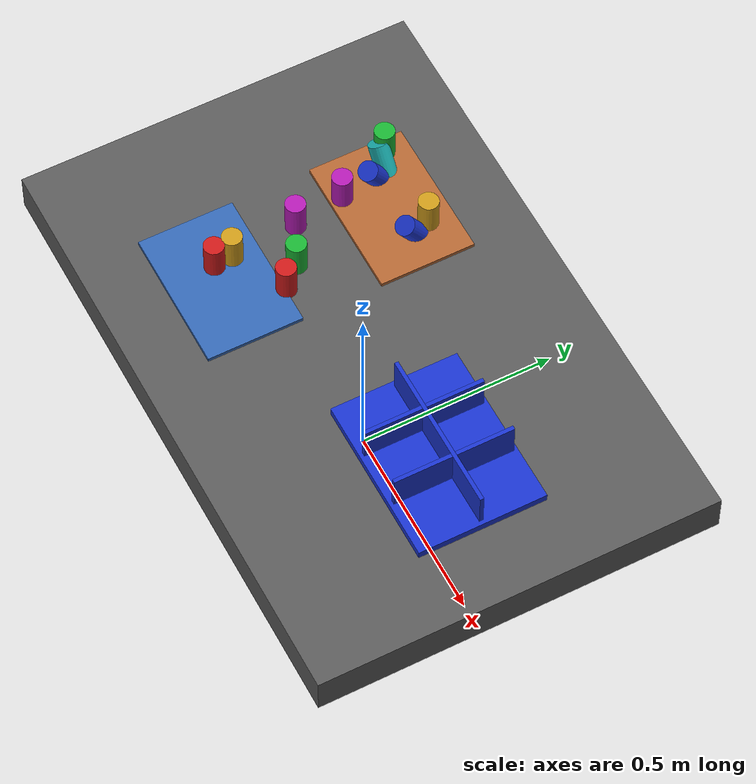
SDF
<?xml version="1.0" ?>
<sdf version="1.9">
  <!-- Standalone M1B scene.  The controller-backed Panda is spawned by the
       existing launch path; this file never alters the frozen M1A cube world. -->
  <world name="industrial_cylinder_v1">
    <physics name="bullet" type="bullet"><max_step_size>0.001</max_step_size><real_time_factor>1.0</real_time_factor></physics>
    <plugin name="gz::sim::systems::Physics" filename="gz-sim-physics-system"><engine><filename>gz-physics-bullet-featherstone-plugin</filename></engine></plugin>
    <plugin name="gz::sim::systems::UserCommands" filename="gz-sim-user-commands-system"/>
    <plugin name="gz::sim::systems::SceneBroadcaster" filename="gz-sim-scene-broadcaster-system"/>
    <plugin name="gz::sim::systems::Sensors" filename="gz-sim-sensors-system"><render_engine>ogre2</render_engine></plugin>
    <gravity>0 0 -9.81</gravity>
    <light type="directional" name="industrial_light"><pose>0 0 5 0 0 0</pose><direction>-0.3 0.2 -0.9</direction><diffuse>0.9 0.9 0.9 1</diffuse></light>
    <model name="industrial_work_table"><static>true</static><link name="link"><pose>0 0 0.4 0 0 0</pose><collision name="collision"><geometry><box><size>1.5 1.0 0.1</size></box></geometry></collision><visual name="visual"><geometry><box><size>1.5 1.0 0.1</size></box></geometry><material><diffuse>0.35 0.35 0.35 1</diffuse></material></visual></link></model>
    <model name="camera_fixture"><static>true</static><link name="camera_rgbd"><pose>-0.80 -0.80 1.40 0 0.77 0.93</pose><sensor name="front_rgbd" type="rgbd_camera"><always_on>1</always_on><update_rate>15</update_rate><topic>/xh/camera/rgbd</topic><camera><horizontal_fov>1.047</horizontal_fov><image><width>640</width><height>480</height><format>R8G8B8</format></image><clip><near>0.1</near><far>4.0</far></clip></camera></sensor></link></model>
    <model name="incoming_zone_a"><static>true</static><link name="link"><pose>-0.28 -0.22 0.455 0 0 0</pose><visual name="visual"><geometry><box><size>0.36 0.24 0.01</size></box></geometry><material><diffuse>0.2 0.4 0.7 1</diffuse></material></visual></link></model>
    <model name="incoming_zone_b"><static>true</static><link name="link"><pose>-0.28 0.22 0.455 0 0 0</pose><visual name="visual"><geometry><box><size>0.36 0.24 0.01</size></box></geometry><material><diffuse>0.7 0.4 0.2 1</diffuse></material></visual></link></model>
    <!-- M1B_RANDOM_PARTS_BEGIN -->
    <model name="cylinder_01"><pose>-0.3186 -0.2148 0.5000 0.0000 0.0000 -1.6273</pose><link name="link"><inertial><mass>0.06</mass></inertial><collision name="collision"><geometry><cylinder><radius>0.025</radius><length>0.09</length></cylinder></geometry></collision><visual name="visual"><geometry><cylinder><radius>0.025</radius><length>0.09</length></cylinder></geometry><material><diffuse>0.800 0.100 0.100 1</diffuse><specular>0.15 0.15 0.15 1</specular></material></visual></link></model>
    <model name="cylinder_02"><pose>-0.4240 0.2777 0.5000 3.1416 0.0000 -1.4193</pose><link name="link"><inertial><mass>0.06</mass></inertial><collision name="collision"><geometry><cylinder><radius>0.025</radius><length>0.09</length></cylinder></geometry></collision><visual name="visual"><geometry><cylinder><radius>0.025</radius><length>0.09</length></cylinder></geometry><material><diffuse>0.100 0.700 0.200 1</diffuse><specular>0.15 0.15 0.15 1</specular></material></visual></link></model>
    <model name="cylinder_03"><pose>-0.3653 0.2207 0.4800 0.4500 -0.3000 0.9079</pose><link name="link"><inertial><mass>0.06</mass></inertial><collision name="collision"><geometry><cylinder><radius>0.025</radius><length>0.09</length></cylinder></geometry></collision><visual name="visual"><geometry><cylinder><radius>0.025</radius><length>0.09</length></cylinder></geometry><material><diffuse>0.100 0.200 0.800 1</diffuse><specular>0.15 0.15 0.15 1</specular></material></visual></link></model>
    <model name="cylinder_04"><pose>-0.3219 -0.1672 0.5000 0.0000 0.0000 -1.6130</pose><link name="link"><inertial><mass>0.06</mass></inertial><collision name="collision"><geometry><cylinder><radius>0.025</radius><length>0.09</length></cylinder></geometry></collision><visual name="visual"><geometry><cylinder><radius>0.025</radius><length>0.09</length></cylinder></geometry><material><diffuse>0.800 0.600 0.100 1</diffuse><specular>0.15 0.15 0.15 1</specular></material></visual></link></model>
    <model name="cylinder_05"><pose>-0.3537 0.1309 0.5000 3.1416 0.0000 -0.7707</pose><link name="link"><inertial><mass>0.06</mass></inertial><collision name="collision"><geometry><cylinder><radius>0.025</radius><length>0.09</length></cylinder></geometry></collision><visual name="visual"><geometry><cylinder><radius>0.025</radius><length>0.09</length></cylinder></geometry><material><diffuse>0.700 0.100 0.700 1</diffuse><specular>0.15 0.15 0.15 1</specular></material></visual></link></model>
    <model name="cylinder_06"><pose>-0.3948 0.2581 0.4800 0.4500 -0.3000 -0.9502</pose><link name="link"><inertial><mass>0.06</mass></inertial><collision name="collision"><geometry><cylinder><radius>0.025</radius><length>0.09</length></cylinder></geometry></collision><visual name="visual"><geometry><cylinder><radius>0.025</radius><length>0.09</length></cylinder></geometry><material><diffuse>0.100 0.700 0.700 1</diffuse><specular>0.15 0.15 0.15 1</specular></material></visual></link></model>
    <model name="cylinder_07"><pose>-0.1901 -0.0964 0.5000 0.0000 0.0000 -1.8049</pose><link name="link"><inertial><mass>0.06</mass></inertial><collision name="collision"><geometry><cylinder><radius>0.025</radius><length>0.09</length></cylinder></geometry></collision><visual name="visual"><geometry><cylinder><radius>0.025</radius><length>0.09</length></cylinder></geometry><material><diffuse>0.800 0.100 0.100 1</diffuse><specular>0.15 0.15 0.15 1</specular></material></visual></link></model>
    <model name="cylinder_08"><pose>-0.2377 -0.0462 0.5000 3.1416 0.0000 0.0677</pose><link name="link"><inertial><mass>0.06</mass></inertial><collision name="collision"><geometry><cylinder><radius>0.025</radius><length>0.09</length></cylinder></geometry></collision><visual name="visual"><geometry><cylinder><radius>0.025</radius><length>0.09</length></cylinder></geometry><material><diffuse>0.100 0.700 0.200 1</diffuse><specular>0.15 0.15 0.15 1</specular></material></visual></link></model>
    <model name="cylinder_09"><pose>-0.1880 0.2260 0.4800 0.4500 -0.3000 0.7495</pose><link name="link"><inertial><mass>0.06</mass></inertial><collision name="collision"><geometry><cylinder><radius>0.025</radius><length>0.09</length></cylinder></geometry></collision><visual name="visual"><geometry><cylinder><radius>0.025</radius><length>0.09</length></cylinder></geometry><material><diffuse>0.100 0.200 0.800 1</diffuse><specular>0.15 0.15 0.15 1</specular></material></visual></link></model>
    <model name="cylinder_10"><pose>-0.2025 0.2747 0.5000 0.0000 0.0000 2.4453</pose><link name="link"><inertial><mass>0.06</mass></inertial><collision name="collision"><geometry><cylinder><radius>0.025</radius><length>0.09</length></cylinder></geometry></collision><visual name="visual"><geometry><cylinder><radius>0.025</radius><length>0.09</length></cylinder></geometry><material><diffuse>0.800 0.600 0.100 1</diffuse><specular>0.15 0.15 0.15 1</specular></material></visual></link></model>
    <model name="cylinder_11"><pose>-0.3361 0.0015 0.5000 3.1416 0.0000 2.7512</pose><link name="link"><inertial><mass>0.06</mass></inertial><collision name="collision"><geometry><cylinder><radius>0.025</radius><length>0.09</length></cylinder></geometry></collision><visual name="visual"><geometry><cylinder><radius>0.025</radius><length>0.09</length></cylinder></geometry><material><diffuse>0.700 0.100 0.700 1</diffuse><specular>0.15 0.15 0.15 1</specular></material></visual></link></model>
    <!-- M1B_RANDOM_PARTS_END -->
    <model name="blue_partition_bin"><static>true</static><pose>0.36 0 0.45 0 0 0</pose><link name="link"><collision name="floor"><pose>0 0 0.01 0 0 0</pose><geometry><box><size>0.42 0.32 0.02</size></box></geometry></collision><visual name="floor_visual"><pose>0 0 0.01 0 0 0</pose><geometry><box><size>0.42 0.32 0.02</size></box></geometry><material><diffuse>0.1 0.2 0.8 1</diffuse></material></visual><visual name="row_divider"><pose>0 0 0.06 0 0 0</pose><geometry><box><size>0.40 0.01 0.10</size></box></geometry><material><diffuse>0.1 0.2 0.8 1</diffuse></material></visual><visual name="col_divider_a"><pose>-0.07 0 0.06 0 0 0</pose><geometry><box><size>0.01 0.30 0.10</size></box></geometry><material><diffuse>0.1 0.2 0.8 1</diffuse></material></visual><visual name="col_divider_b"><pose>0.07 0 0.06 0 0 0</pose><geometry><box><size>0.01 0.30 0.10</size></box></geometry><material><diffuse>0.1 0.2 0.8 1</diffuse></material></visual></link></model>
    <!-- Reserved only: second table, bin transport corridor, stackable-bin
         collision volume, and second arm mounting namespace. -->
  </world>
</sdf>
